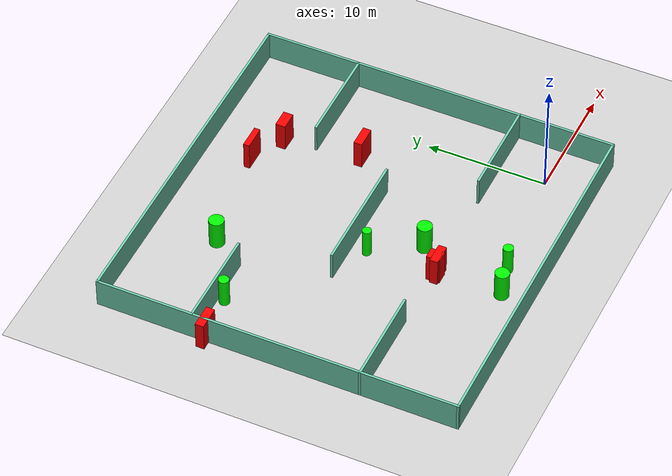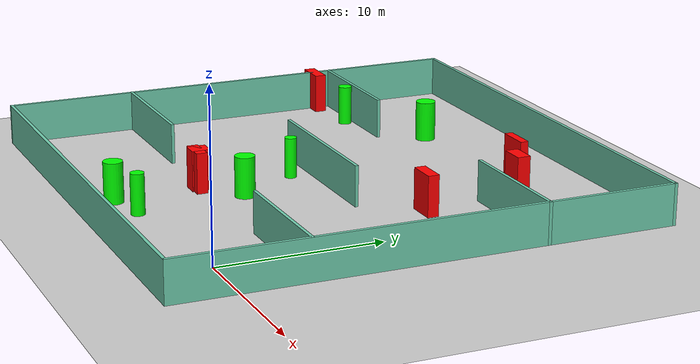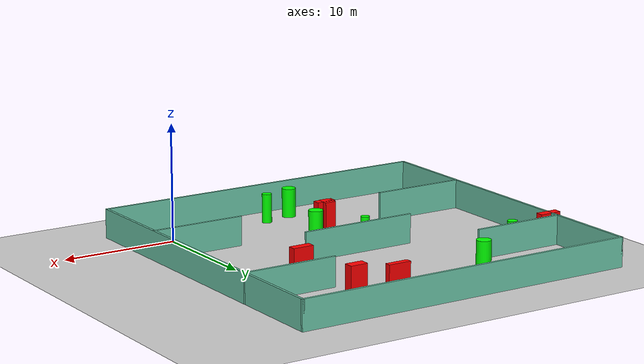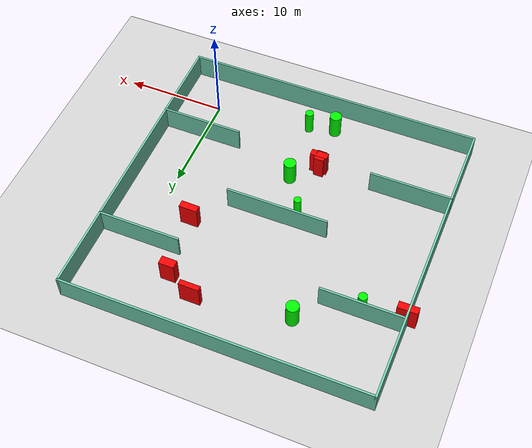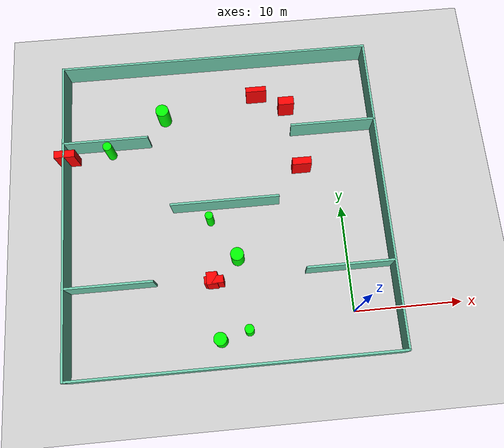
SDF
<sdf version="1.7">
 <world name="default">
  <light name="sun" type="directional">
   <pose>0 0 10 0 -0 0</pose>
   <diffuse>0.8 0.8 0.8 1</diffuse>
   <specular>0.2 0.2 0.2 1</specular>
   <attenuation>
    <range>1000</range>
    <constant>0.9</constant>
    <linear>0.01</linear>
    <quadratic>0.001</quadratic>
   </attenuation>
   <direction>-0.5 0.1 -0.9</direction>
   <spot><inner_angle>0</inner_angle><outer_angle>0</outer_angle><falloff>0</falloff></spot>
  </light>
  <model name="ground_plane">
   <static>1</static>
   <link name="link">
    <collision name="collision">
     <geometry><plane><normal>0 0 1</normal><size>100 100</size></plane></geometry>
     <surface>
      <contact><collide_bitmask>65535</collide_bitmask></contact>
      <friction><ode><mu>100</mu><mu2>50</mu2></ode></friction>
     </surface>
    </collision>
    <visual name="visual">
     <cast_shadows>0</cast_shadows>
     <geometry><plane><normal>0 0 1</normal><size>100 100</size></plane></geometry>
     <material>
      <script><uri>file://media/materials/scripts/gazebo.material</uri><name>Gazebo/Grey</name></script>
     </material>
    </visual>
   </link>
  </model>
  <gravity>0 0 -9.8</gravity>
  <magnetic_field>6e-06 2.3e-05 -4.2e-05</magnetic_field>
  <atmosphere type="adiabatic"/>
  <physics type="ode">
   <max_step_size>0.001</max_step_size>
   <real_time_factor>1</real_time_factor>
   <real_time_update_rate>1000</real_time_update_rate>
  </physics>
  <scene><ambient>0.4 0.4 0.4 1</ambient><background>0.7 0.7 0.7 1</background><shadows>1</shadows></scene>
  <spherical_coordinates>
   <surface_model>EARTH_WGS84</surface_model>
   <latitude_deg>0</latitude_deg>
   <longitude_deg>0</longitude_deg>
   <elevation>0</elevation>
   <heading_deg>0</heading_deg>
  </spherical_coordinates>
  <model name="my_base_walls">
   <link name="Wall_10">
    <collision name="Wall_10_Collision">
     <geometry><box><size>8.2 0.2 2.5</size></box></geometry>
     <pose>0 0 1.25 0 -0 0</pose>
    </collision>
    <visual name="Wall_10_Visual">
     <pose>0 0 1.25 0 -0 0</pose>
     <geometry><box><size>8.2 0.2 2.5</size></box></geometry>
     <material>
      <script><uri>file://media/materials/scripts/gazebo.material</uri><name>Gazebo/Grey</name></script>
      <ambient>0.435294 0.796078 0.67451 1</ambient>
     </material>
     <meta><layer>0</layer></meta>
    </visual>
    <pose>-11 -7 0 0 -0 0</pose>
   </link>
   <link name="Wall_12">
    <collision name="Wall_12_Collision">
     <geometry><box><size>8.2 0.2 2.5</size></box></geometry>
     <pose>0 0 1.25 0 -0 0</pose>
    </collision>
    <visual name="Wall_12_Visual">
     <pose>0 0 1.25 0 -0 0</pose>
     <geometry><box><size>8.2 0.2 2.5</size></box></geometry>
     <material>
      <script><uri>file://media/materials/scripts/gazebo.material</uri><name>Gazebo/Grey</name></script>
      <ambient>0.435294 0.796078 0.67451 1</ambient>
     </material>
     <meta><layer>0</layer></meta>
    </visual>
    <pose>-11 7 0 0 -0 0</pose>
   </link>
   <link name="Wall_14">
    <collision name="Wall_14_Collision">
     <geometry><box><size>8.2 0.2 2.5</size></box></geometry>
     <pose>0 0 1.25 0 -0 0</pose>
    </collision>
    <visual name="Wall_14_Visual">
     <pose>0 0 1.25 0 -0 0</pose>
     <geometry><box><size>8.2 0.2 2.5</size></box></geometry>
     <material>
      <script><uri>file://media/materials/scripts/gazebo.material</uri><name>Gazebo/Grey</name></script>
      <ambient>0.435294 0.796078 0.67451 1</ambient>
     </material>
     <meta><layer>0</layer></meta>
    </visual>
    <pose>11 7 0 0 -0 3.14159</pose>
   </link>
   <link name="Wall_16">
    <collision name="Wall_16_Collision">
     <geometry><box><size>10.2 0.2 2.5</size></box></geometry>
     <pose>0 0 1.25 0 -0 0</pose>
    </collision>
    <visual name="Wall_16_Visual">
     <pose>0 0 1.25 0 -0 0</pose>
     <geometry><box><size>10.2 0.2 2.5</size></box></geometry>
     <material>
      <script><uri>file://media/materials/scripts/gazebo.material</uri><name>Gazebo/Grey</name></script>
      <ambient>0.435294 0.796078 0.67451 1</ambient>
     </material>
     <meta><layer>0</layer></meta>
    </visual>
    <pose>0 0 0 0 -0 3.14159</pose>
   </link>
   <link name="Wall_2">
    <collision name="Wall_2_Collision">
     <geometry><box><size>30.2 0.2 2.5</size></box></geometry>
     <pose>0 0 1.25 0 -0 0</pose>
    </collision>
    <visual name="Wall_2_Visual">
     <pose>0 0 1.25 0 -0 0</pose>
     <geometry><box><size>30.2 0.2 2.5</size></box></geometry>
     <material>
      <script><uri>file://media/materials/scripts/gazebo.material</uri><name>Gazebo/Grey</name></script>
      <ambient>0.435294 0.796078 0.67451 1</ambient>
     </material>
     <meta><layer>0</layer></meta>
    </visual>
    <pose>0 -15 0 0 -0 3.14159</pose>
   </link>
   <link name="Wall_3">
    <collision name="Wall_3_Collision">
     <geometry><box><size>30.2 0.2 2.5</size></box></geometry>
     <pose>0 0 1.25 0 -0 0</pose>
    </collision>
    <visual name="Wall_3_Visual">
     <pose>0 0 1.25 0 -0 0</pose>
     <geometry><box><size>30.2 0.2 2.5</size></box></geometry>
     <material>
      <script><uri>file://media/materials/scripts/gazebo.material</uri><name>Gazebo/Grey</name></script>
      <ambient>0.435294 0.796078 0.67451 1</ambient>
     </material>
     <meta><layer>0</layer></meta>
    </visual>
    <pose>-15 0 0 0 -0 1.5708</pose>
   </link>
   <link name="Wall_4">
    <collision name="Wall_4_Collision">
     <geometry><box><size>30.2 0.2 2.5</size></box></geometry>
     <pose>0 0 1.25 0 -0 0</pose>
    </collision>
    <visual name="Wall_4_Visual">
     <pose>0 0 1.25 0 -0 0</pose>
     <geometry><box><size>30.2 0.2 2.5</size></box></geometry>
     <material>
      <script><uri>file://media/materials/scripts/gazebo.material</uri><name>Gazebo/Grey</name></script>
      <ambient>0.435294 0.796078 0.67451 1</ambient>
     </material>
     <meta><layer>0</layer></meta>
    </visual>
    <pose>0 15 0 0 -0 0</pose>
   </link>
   <link name="Wall_6">
    <collision name="Wall_6_Collision">
     <geometry><box><size>30.2 0.2 2.5</size></box></geometry>
     <pose>0 0 1.25 0 -0 0</pose>
    </collision>
    <visual name="Wall_6_Visual">
     <pose>0 0 1.25 0 -0 0</pose>
     <geometry><box><size>30.2 0.2 2.5</size></box></geometry>
     <material>
      <script><uri>file://media/materials/scripts/gazebo.material</uri><name>Gazebo/Grey</name></script>
      <ambient>0.435294 0.796078 0.67451 1</ambient>
     </material>
     <meta><layer>0</layer></meta>
    </visual>
    <pose>15 0 0 0 -0 1.5708</pose>
   </link>
   <link name="Wall_8">
    <collision name="Wall_8_Collision">
     <geometry><box><size>8.2 0.2 2.5</size></box></geometry>
     <pose>0 0 1.25 0 -0 0</pose>
    </collision>
    <visual name="Wall_8_Visual">
     <pose>0 0 1.25 0 -0 0</pose>
     <geometry><box><size>8.2 0.2 2.5</size></box></geometry>
     <material>
      <script><uri>file://media/materials/scripts/gazebo.material</uri><name>Gazebo/Grey</name></script>
      <ambient>0.435294 0.796078 0.67451 1</ambient>
     </material>
     <meta><layer>0</layer></meta>
    </visual>
    <pose>11 -7 0 0 -0 3.14159</pose>
   </link>
   <static>1</static>
   <pose>-11 11 0 0 -0 0</pose>
  </model>
  <model name="cylinder1">
   <static>1</static>
   <link name="link">
    <inertial>
     <mass>1</mass>
     <inertia><ixx>0.5</ixx><ixy>0</ixy><ixz>0</ixz><iyy>0.5</iyy><iyz>0</iyz><izz>1</izz></inertia>
    </inertial>
    <collision name="collision">
     <geometry><cylinder><radius>0.6123660138051523</radius><length>2.5</length></cylinder></geometry>
    </collision>
    <visual name="visual">
     <geometry><cylinder><radius>0.6123660138051523</radius><length>2.5</length></cylinder></geometry>
     <material>
      <ambient>0 1 0 1</ambient>
      <diffuse>0 1 0 1</diffuse>
      <specular>0.1 0.1 0.1 1</specular>
      <emissive>0 0 0 0</emissive>
     </material>
    </visual>
   </link>
   <pose>-10.259408939571411 5.790777828343304 1.25 0 0 0</pose>
  </model>
  <model name="cylinder2">
   <static>1</static>
   <link name="link">
    <inertial>
     <mass>1</mass>
     <inertia><ixx>0.5</ixx><ixy>0</ixy><ixz>0</ixz><iyy>0.5</iyy><iyz>0</iyz><izz>1</izz></inertia>
    </inertial>
    <collision name="collision">
     <geometry><cylinder><radius>0.42900887901322515</radius><length>2.5</length></cylinder></geometry>
    </collision>
    <visual name="visual">
     <geometry><cylinder><radius>0.42900887901322515</radius><length>2.5</length></cylinder></geometry>
     <material>
      <ambient>0 1 0 1</ambient>
      <diffuse>0 1 0 1</diffuse>
      <specular>0.1 0.1 0.1 1</specular>
      <emissive>0 0 0 0</emissive>
     </material>
    </visual>
   </link>
   <pose>-21.812210391705257 17.363224301105667 1.25 0 0 0</pose>
  </model>
  <model name="cylinder3">
   <static>1</static>
   <link name="link">
    <inertial>
     <mass>1</mass>
     <inertia><ixx>0.5</ixx><ixy>0</ixy><ixz>0</ixz><iyy>0.5</iyy><iyz>0</iyz><izz>1</izz></inertia>
    </inertial>
    <collision name="collision">
     <geometry><cylinder><radius>0.6215542833797206</radius><length>2.5</length></cylinder></geometry>
    </collision>
    <visual name="visual">
     <geometry><cylinder><radius>0.6215542833797206</radius><length>2.5</length></cylinder></geometry>
     <material>
      <ambient>0 1 0 1</ambient>
      <diffuse>0 1 0 1</diffuse>
      <specular>0.1 0.1 0.1 1</specular>
      <emissive>0 0 0 0</emissive>
     </material>
    </visual>
   </link>
   <pose>-16.43785882830816 20.640620906070733 1.25 0 0 0</pose>
  </model>
  <model name="cylinder4">
   <static>1</static>
   <link name="link">
    <inertial>
     <mass>1</mass>
     <inertia><ixx>0.5</ixx><ixy>0</ixy><ixz>0</ixz><iyy>0.5</iyy><iyz>0</iyz><izz>1</izz></inertia>
    </inertial>
    <collision name="collision">
     <geometry><cylinder><radius>0.41896221801617234</radius><length>2.5</length></cylinder></geometry>
    </collision>
    <visual name="visual">
     <geometry><cylinder><radius>0.41896221801617234</radius><length>2.5</length></cylinder></geometry>
     <material>
      <ambient>0 1 0 1</ambient>
      <diffuse>0 1 0 1</diffuse>
      <specular>0.1 0.1 0.1 1</specular>
      <emissive>0 0 0 0</emissive>
     </material>
    </visual>
   </link>
   <pose>-9.690699340627228 -0.97218183662185 1.25 0 0 0</pose>
  </model>
  <model name="cylinder5">
   <static>1</static>
   <link name="link">
    <inertial>
     <mass>1</mass>
     <inertia><ixx>0.5</ixx><ixy>0</ixy><ixz>0</ixz><iyy>0.5</iyy><iyz>0</iyz><izz>1</izz></inertia>
    </inertial>
    <collision name="collision">
     <geometry><cylinder><radius>0.5918848604810703</radius><length>2.5</length></cylinder></geometry>
    </collision>
    <visual name="visual">
     <geometry><cylinder><radius>0.5918848604810703</radius><length>2.5</length></cylinder></geometry>
     <material>
      <ambient>0 1 0 1</ambient>
      <diffuse>0 1 0 1</diffuse>
      <specular>0.1 0.1 0.1 1</specular>
      <emissive>0 0 0 0</emissive>
     </material>
    </visual>
   </link>
   <pose>-12.29169231516268 -1.595075960994691 1.25 0 0 0</pose>
  </model>
  <model name="cylinder6">
   <static>1</static>
   <link name="link">
    <inertial>
     <mass>1</mass>
     <inertia><ixx>0.5</ixx><ixy>0</ixy><ixz>0</ixz><iyy>0.5</iyy><iyz>0</iyz><izz>1</izz></inertia>
    </inertial>
    <collision name="collision">
     <geometry><cylinder><radius>0.3669658865420467</radius><length>2.5</length></cylinder></geometry>
    </collision>
    <visual name="visual">
     <geometry><cylinder><radius>0.3669658865420467</radius><length>2.5</length></cylinder></geometry>
     <material>
      <ambient>0 1 0 1</ambient>
      <diffuse>0 1 0 1</diffuse>
      <specular>0.1 0.1 0.1 1</specular>
      <emissive>0 0 0 0</emissive>
     </material>
    </visual>
   </link>
   <pose>-12.570790377492152 9.644907589153076 1.25 0 0 0</pose>
  </model>
  <model name="box1">
   <static>1</static>
   <link name="link">
    <inertial>
     <mass>1</mass>
     <inertia><ixx>0.083</ixx><ixy>0</ixy><ixz>0</ixz><iyy>0.083</iyy><iyz>0</iyz><izz>0.083</izz></inertia>
    </inertial>
    <collision name="collision">
     <geometry><box><size>1.9429603197258887 0.7097966796465669 2.5</size></box></geometry>
    </collision>
    <visual name="visual">
     <geometry><box><size>1.9429603197258887 0.7097966796465669 2.5</size></box></geometry>
     <material>
      <ambient>1 0 0 1</ambient>
      <diffuse>1 0 0 1</diffuse>
      <specular>0.1 0.1 0.1 1</specular>
      <emissive>0 0 0 0</emissive>
     </material>
    </visual>
    <sensor name="my_contact" type="contact">
     <contact><collision>box_collision</collision><topic>__default_topic__</topic></contact>
    </sensor>
   </link>
   <pose>-25.88253507901337 16.948769401694246 1.25 0 0 0</pose>
  </model>
  <model name="box2">
   <static>1</static>
   <link name="link">
    <inertial>
     <mass>1</mass>
     <inertia><ixx>0.083</ixx><ixy>0</ixy><ixz>0</ixz><iyy>0.083</iyy><iyz>0</iyz><izz>0.083</izz></inertia>
    </inertial>
    <collision name="collision">
     <geometry><box><size>1.7283129778813722 0.6754039772477717 2.5</size></box></geometry>
    </collision>
    <visual name="visual">
     <geometry><box><size>1.7283129778813722 0.6754039772477717 2.5</size></box></geometry>
     <material>
      <ambient>1 0 0 1</ambient>
      <diffuse>1 0 0 1</diffuse>
      <specular>0.1 0.1 0.1 1</specular>
      <emissive>0 0 0 0</emissive>
     </material>
    </visual>
    <sensor name="my_contact" type="contact">
     <contact><collision>box_collision</collision><topic>__default_topic__</topic></contact>
    </sensor>
   </link>
   <pose>-12.515078421919622 3.6555841542245915 1.25 0 0 0</pose>
  </model>
  <model name="box3">
   <static>1</static>
   <link name="link">
    <inertial>
     <mass>1</mass>
     <inertia><ixx>0.083</ixx><ixy>0</ixy><ixz>0</ixz><iyy>0.083</iyy><iyz>0</iyz><izz>0.083</izz></inertia>
    </inertial>
    <collision name="collision">
     <geometry><box><size>1.804048109127005 0.6905102678811437 2.5</size></box></geometry>
    </collision>
    <visual name="visual">
     <geometry><box><size>1.804048109127005 0.6905102678811437 2.5</size></box></geometry>
     <material>
      <ambient>1 0 0 1</ambient>
      <diffuse>1 0 0 1</diffuse>
      <specular>0.1 0.1 0.1 1</specular>
      <emissive>0 0 0 0</emissive>
     </material>
    </visual>
    <sensor name="my_contact" type="contact">
     <contact><collision>box_collision</collision><topic>__default_topic__</topic></contact>
    </sensor>
   </link>
   <pose>-3.4239791696068487 14.239028985158534 1.25 0 0 0</pose>
  </model>
  <model name="box4">
   <static>1</static>
   <link name="link">
    <inertial>
     <mass>1</mass>
     <inertia><ixx>0.083</ixx><ixy>0</ixy><ixz>0</ixz><iyy>0.083</iyy><iyz>0</iyz><izz>0.083</izz></inertia>
    </inertial>
    <collision name="collision">
     <geometry><box><size>1.9962933400660634 0.508019115027098 2.5</size></box></geometry>
    </collision>
    <visual name="visual">
     <geometry><box><size>1.9962933400660634 0.508019115027098 2.5</size></box></geometry>
     <material>
      <ambient>1 0 0 1</ambient>
      <diffuse>1 0 0 1</diffuse>
      <specular>0.1 0.1 0.1 1</specular>
      <emissive>0 0 0 0</emissive>
     </material>
    </visual>
    <sensor name="my_contact" type="contact">
     <contact><collision>box_collision</collision><topic>__default_topic__</topic></contact>
    </sensor>
   </link>
   <pose>-7.154086852753167 22.113105557192753 1.25 0 0 0</pose>
  </model>
  <model name="box5">
   <static>1</static>
   <link name="link">
    <inertial>
     <mass>1</mass>
     <inertia><ixx>0.083</ixx><ixy>0</ixy><ixz>0</ixz><iyy>0.083</iyy><iyz>0</iyz><izz>0.083</izz></inertia>
    </inertial>
    <collision name="collision">
     <geometry><box><size>1.5125062567285215 0.8231975521730095 2.5</size></box></geometry>
    </collision>
    <visual name="visual">
     <geometry><box><size>1.5125062567285215 0.8231975521730095 2.5</size></box></geometry>
     <material>
      <ambient>1 0 0 1</ambient>
      <diffuse>1 0 0 1</diffuse>
      <specular>0.1 0.1 0.1 1</specular>
      <emissive>0 0 0 0</emissive>
     </material>
    </visual>
    <sensor name="my_contact" type="contact">
     <contact><collision>box_collision</collision><topic>__default_topic__</topic></contact>
    </sensor>
   </link>
   <pose>-4.312584493532652 20.63080428047664 1.25 0 0 0</pose>
  </model>
  <model name="box6">
   <static>1</static>
   <link name="link">
    <inertial>
     <mass>1</mass>
     <inertia><ixx>0.083</ixx><ixy>0</ixy><ixz>0</ixz><iyy>0.083</iyy><iyz>0</iyz><izz>0.083</izz></inertia>
    </inertial>
    <collision name="collision">
     <geometry><box><size>0.9910543044445221 1.1432758699954075 2.5</size></box></geometry>
    </collision>
    <visual name="visual">
     <geometry><box><size>0.9910543044445221 1.1432758699954075 2.5</size></box></geometry>
     <material>
      <ambient>1 0 0 1</ambient>
      <diffuse>1 0 0 1</diffuse>
      <specular>0.1 0.1 0.1 1</specular>
      <emissive>0 0 0 0</emissive>
     </material>
    </visual>
    <sensor name="my_contact" type="contact">
     <contact><collision>box_collision</collision><topic>__default_topic__</topic></contact>
    </sensor>
   </link>
   <pose>-12.684523278532648 3.804630526293577 1.25 0 0 0</pose>
  </model>
 </world>
</sdf>
